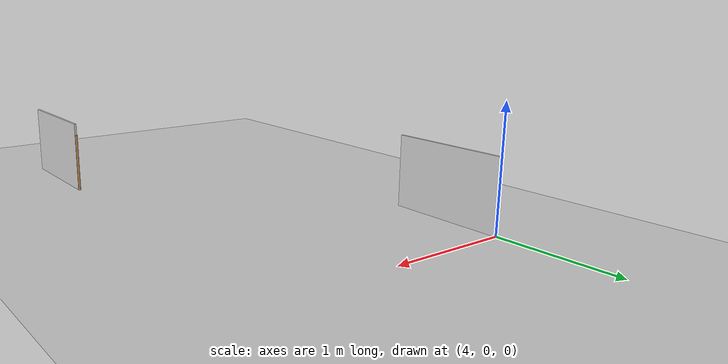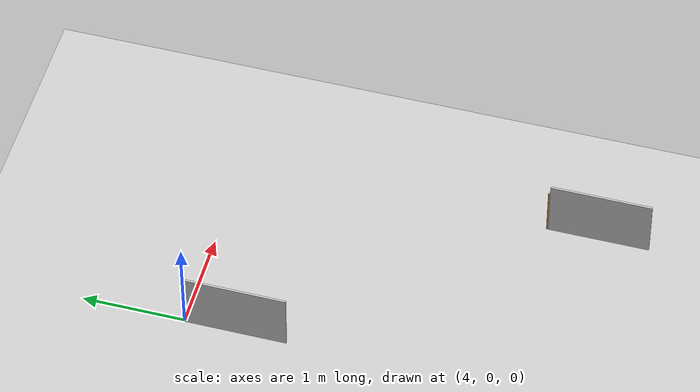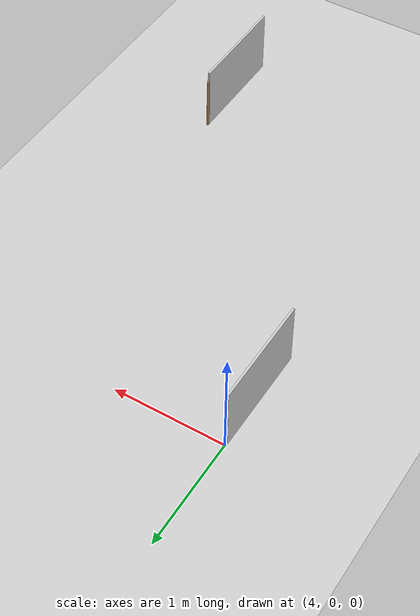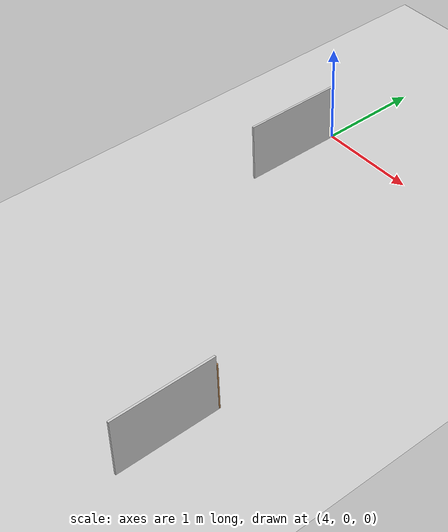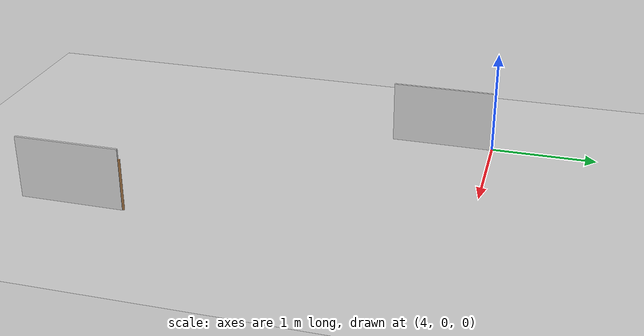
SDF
<sdf version="1.7">
 <world name="default">
  <model name="ground_plane">
   <static>true</static>
   <link name="link">
    <collision name="collision">
     <geometry><plane><normal>0 0 1</normal><size>1 1</size></plane></geometry>
    </collision>
    <visual name="visual">
     <geometry><plane><normal>0 0 1</normal><size>100 100</size></plane></geometry>
     <material>
      <ambient>0.8 0.8 0.8 1</ambient>
      <diffuse>0.8 0.8 0.8 1</diffuse>
      <specular>0.8 0.8 0.8 1</specular>
     </material>
    </visual>
    <inertial>
     <mass>1</mass>
     <inertia><ixx>1</ixx><ixy>0</ixy><ixz>0</ixz><iyy>1</iyy><iyz>0</iyz><izz>1</izz></inertia>
    </inertial>
   </link>
  </model>
  <model name="maze_1_6x5_clone_clone_1">
   <frame name="plywood_panel_0_0_b::__model__" attached_to="plywood_panel_0_0_b::main">
    <pose relative_to="__model__">0 0 0 0 -0 1.571</pose>
   </frame>
   <static>true</static>
   <link name="plywood_panel_0_0_b::main">
    <pose relative_to="plywood_panel_0_0_b::__model__">0 0 0 0 -0 0</pose>
    <collision name="collision">
     <pose>0 -0.5 0.3 -1.571 -0 -1.571</pose>
     <geometry><box><size>0.98 0.6 0.02</size></box></geometry>
    </collision>
    <visual name="visual">
     <pose>0.01 -0.01 0 3.14159 -1.57059 3.14159</pose>
     <geometry>
      <mesh>
       <scale>1 1 1</scale>
       <uri>/home/mayank/cognipilot/cranium/src/dream_world/models/plywood_panel/meshes/plywood.dae</uri>
      </mesh>
     </geometry>
    </visual>
   </link>
   <frame name="wooden_joint_0_0_b::__model__" attached_to="wooden_joint_0_0_b::link_0">
    <pose relative_to="__model__">0 0 0 0 -0 0</pose>
   </frame>
   <link name="wooden_joint_0_0_b::link_0">
    <pose relative_to="wooden_joint_0_0_b::__model__">0 0 0.25 0 -0 0</pose>
    <inertial>
     <mass>0.00215981</mass>
     <inertia>
      <ixx>0.00018028</ixx>
      <ixy>0</ixy>
      <ixz>0</ixz>
      <iyy>0.00018028</iyy>
      <iyz>0</iyz>
      <izz>5.8e-07</izz>
     </inertia>
    </inertial>
    <visual name="visual">
     <geometry><cylinder><radius>0.01</radius><length>0.5</length></cylinder></geometry>
     <material>
      <lighting>1</lighting>
      <script><uri>file://media/materials/scripts/gazebo.material</uri><name>Gazebo/Wood</name></script>
      <shader type="pixel"><normal_map>__default__</normal_map></shader>
      <ambient>0.3 0.3 0.3 1</ambient>
      <diffuse>0.7 0.7 0.7 1</diffuse>
      <specular>0.01 0.01 0.01 1</specular>
      <emissive>0 0 0 1</emissive>
     </material>
    </visual>
    <collision name="collision">
     <geometry><cylinder><radius>0.01</radius><length>0.5</length></cylinder></geometry>
     <surface>
      <friction>
       <ode><mu>1</mu><mu2>1</mu2><fdir1>0 0 0</fdir1><slip1>0</slip1><slip2>0</slip2></ode>
       <torsional>
        <coefficient>1</coefficient>
        <patch_radius>0</patch_radius>
        <surface_radius>0</surface_radius>
        <use_patch_radius>1</use_patch_radius>
        <ode><slip>0</slip></ode>
       </torsional>
      </friction>
      <bounce><restitution_coefficient>0</restitution_coefficient><threshold>1e+06</threshold></bounce>
      <contact>
       <collide_without_contact>0</collide_without_contact>
       <collide_without_contact_bitmask>1</collide_without_contact_bitmask>
       <collide_bitmask>1</collide_bitmask>
       <ode>
        <soft_cfm>0</soft_cfm>
        <soft_erp>0.2</soft_erp>
        <kp>1e+13</kp>
        <kd>1</kd>
        <max_vel>0.01</max_vel>
        <min_depth>0</min_depth>
       </ode>
       <bullet>
        <split_impulse>1</split_impulse>
        <split_impulse_penetration_threshold>-0.01</split_impulse_penetration_threshold>
        <soft_cfm>0</soft_cfm>
        <soft_erp>0.2</soft_erp>
        <kp>1e+13</kp>
        <kd>1</kd>
       </bullet>
      </contact>
     </surface>
    </collision>
   </link>
   <static>true</static>
   <pose>6 -3 0 0 0 -1.5708</pose>
  </model>
  <model name="maze_1_6x5_clone_clone_clone_0">
   <frame name="plywood_panel_0_0_b::__model__" attached_to="plywood_panel_0_0_b::main">
    <pose relative_to="__model__">0 0 0 0 -0 1.571</pose>
   </frame>
   <static>true</static>
   <link name="plywood_panel_0_0_b::main">
    <pose relative_to="plywood_panel_0_0_b::__model__">0 0 0 0 -0 0</pose>
    <collision name="collision">
     <pose>0 -0.5 0.3 -1.571 -0 -1.571</pose>
     <geometry><box><size>0.98 0.6 0.02</size></box></geometry>
    </collision>
    <visual name="visual">
     <pose>0.01 -0.01 0 3.14159 -1.57059 3.14159</pose>
     <geometry>
      <mesh>
       <scale>1 1 1</scale>
       <uri>/home/mayank/cognipilot/cranium/src/dream_world/models/plywood_panel/meshes/plywood.dae</uri>
      </mesh>
     </geometry>
    </visual>
   </link>
   <frame name="wooden_joint_0_0_b::__model__" attached_to="wooden_joint_0_0_b::link_0">
    <pose relative_to="__model__">0 0 0 0 -0 0</pose>
   </frame>
   <link name="wooden_joint_0_0_b::link_0">
    <pose relative_to="wooden_joint_0_0_b::__model__">0 0 0.25 0 -0 0</pose>
    <inertial>
     <mass>0.00215981</mass>
     <inertia>
      <ixx>0.00018028</ixx>
      <ixy>0</ixy>
      <ixz>0</ixz>
      <iyy>0.00018028</iyy>
      <iyz>0</iyz>
      <izz>5.8e-07</izz>
     </inertia>
    </inertial>
    <visual name="visual">
     <geometry><cylinder><radius>0.01</radius><length>0.5</length></cylinder></geometry>
     <material>
      <lighting>1</lighting>
      <script><uri>file://media/materials/scripts/gazebo.material</uri><name>Gazebo/Wood</name></script>
      <shader type="pixel"><normal_map>__default__</normal_map></shader>
      <ambient>0.3 0.3 0.3 1</ambient>
      <diffuse>0.7 0.7 0.7 1</diffuse>
      <specular>0.01 0.01 0.01 1</specular>
      <emissive>0 0 0 1</emissive>
     </material>
    </visual>
    <collision name="collision">
     <geometry><cylinder><radius>0.01</radius><length>0.5</length></cylinder></geometry>
     <surface>
      <friction>
       <ode><mu>1</mu><mu2>1</mu2><fdir1>0 0 0</fdir1><slip1>0</slip1><slip2>0</slip2></ode>
       <torsional>
        <coefficient>1</coefficient>
        <patch_radius>0</patch_radius>
        <surface_radius>0</surface_radius>
        <use_patch_radius>1</use_patch_radius>
        <ode><slip>0</slip></ode>
       </torsional>
      </friction>
      <bounce><restitution_coefficient>0</restitution_coefficient><threshold>1e+06</threshold></bounce>
      <contact>
       <collide_without_contact>0</collide_without_contact>
       <collide_without_contact_bitmask>1</collide_without_contact_bitmask>
       <collide_bitmask>1</collide_bitmask>
       <ode>
        <soft_cfm>0</soft_cfm>
        <soft_erp>0.2</soft_erp>
        <kp>1e+13</kp>
        <kd>1</kd>
        <max_vel>0.01</max_vel>
        <min_depth>0</min_depth>
       </ode>
       <bullet>
        <split_impulse>1</split_impulse>
        <split_impulse_penetration_threshold>-0.01</split_impulse_penetration_threshold>
        <soft_cfm>0</soft_cfm>
        <soft_erp>0.2</soft_erp>
        <kp>1e+13</kp>
        <kd>1</kd>
       </bullet>
      </contact>
     </surface>
    </collision>
   </link>
   <static>true</static>
   <pose>4 0 0 0 0 -1.5708</pose>
  </model>
 </world>
</sdf>
